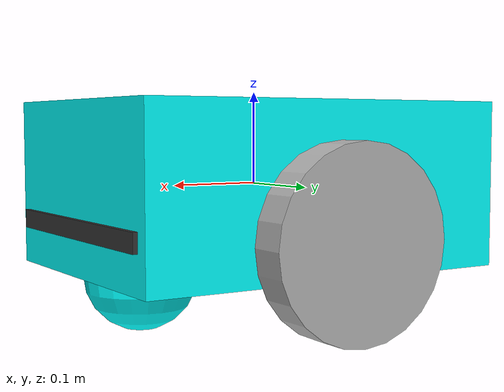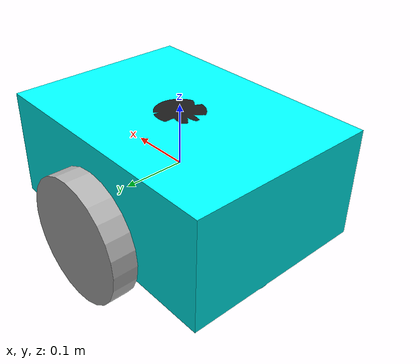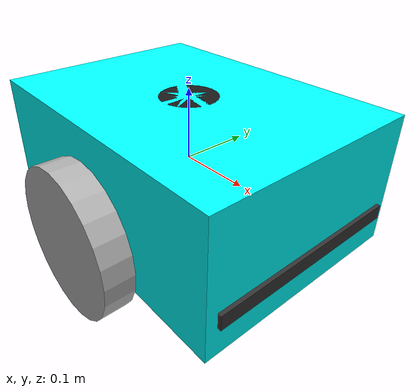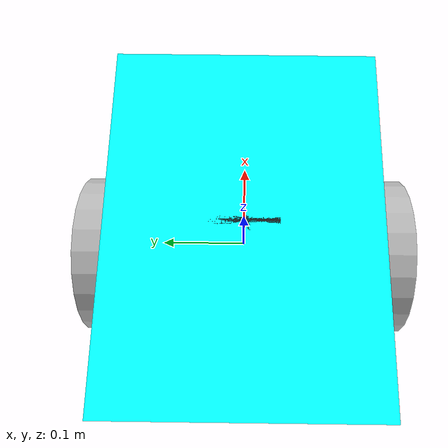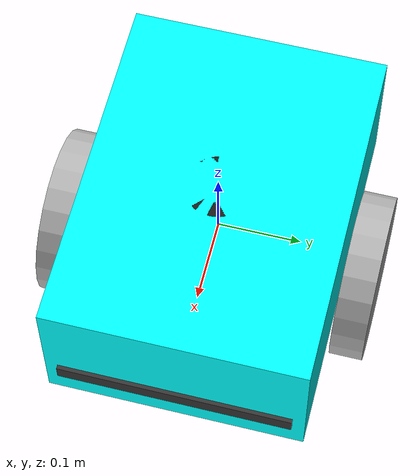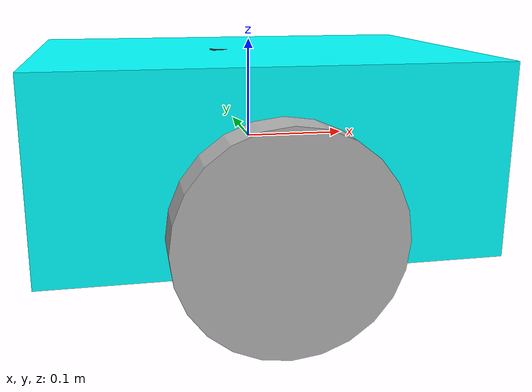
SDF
<?xml version="1.0" ?>
<sdf version="1.8">
  <model name='SyncBot01' canonical_link='base_link'>

    <!-- Robot Base -->
    <link name='base_link'>
      <must_be_base_link>true</must_be_base_link>
      <visual name="base_link_visual">
        <geometry>
          <box><size>0.42 0.31 0.18</size></box>
        </geometry>
        <material>
          <ambient>0 1 1 1</ambient>
          <diffuse>0 1 1 1</diffuse>
        </material>
      </visual>

      <collision name="base_link_collision">
        <geometry>
          <box><size>0.42 0.31 0.18</size></box>
        </geometry>
      </collision>

      <!-- LED Strip (front) -->
      <visual name="led_strip_visual">
        <pose>0.2125 0 -0.04 0 0 0</pose>
        <geometry>
          <box><size>0.005 0.28 0.02</size></box>
        </geometry>
        <material>
          <ambient>0.2 0.2 0.2 1</ambient>
          <diffuse>0.2 0.2 0.2 1</diffuse>
        </material>
      </visual>

      <sensor name="imu_sensor" type="imu">
        <topic>robot01/imu</topic>
        <update_rate>100</update_rate>
        <always_on>1</always_on>
        <gz_frame_id>robot01/imu</gz_frame_id>
        <imu>
          <angular_velocity>
            <x><noise type="gaussian"><mean>0</mean><stddev>0.0002</stddev></noise></x>
            <y><noise type="gaussian"><mean>0</mean><stddev>0.0002</stddev></noise></y>
            <z><noise type="gaussian"><mean>0</mean><stddev>0.0002</stddev></noise></z>
          </angular_velocity>
          <linear_acceleration>
            <x><noise type="gaussian"><mean>0</mean><stddev>0.017</stddev></noise></x>
            <y><noise type="gaussian"><mean>0</mean><stddev>0.017</stddev></noise></y>
            <z><noise type="gaussian"><mean>0</mean><stddev>0.017</stddev></noise></z>
          </linear_acceleration>
        </imu>
      </sensor>
    </link>

    <!-- Robot Footprint -->
    <link name='base_footprint'>
      <pose relative_to="base_joint"/>
      <inertial>
        <pose>0 0 0 1.5708 0 1.5708</pose>
        <mass>15</mass>
        <inertia>
          <ixx>0.261</ixx>
          <ixy>0.0</ixy>
          <ixz>0.0</ixz>
          <iyy>0.341</iyy>
          <iyz>0.0</iyz>
          <izz>0.161</izz>
        </inertia>
      </inertial>
    </link>

    <joint name='base_joint' type='fixed'>
      <parent>base_link</parent>
      <child>base_footprint</child>
      <pose relative_to="base_link">0.0 0.0 -0.15 0 0 0</pose>
    </joint>

    <!-- Left Wheel -->
    <link name="drivewhl_l_link">
      <pose relative_to="drivewhl_l_joint"/>
      <visual name="drivewhl_l_link_visual">
        <pose>0 0 0 1.5708 0 0</pose>
        <geometry>
          <cylinder>
            <radius>0.10</radius>
            <length>0.04</length>
          </cylinder>
        </geometry>
        <material>
          <ambient>0.3 0.3 0.3 1.0</ambient>
          <diffuse>0.7 0.7 0.7 1.0</diffuse>
        </material>
      </visual>
      <collision name="drivewhl_l_link_collision">
        <pose>0 0 0 1.5708 0 0</pose>
        <geometry>
          <cylinder>
            <radius>0.10</radius>
            <length>0.04</length>
          </cylinder>
        </geometry>
      </collision>
      <inertial>
        <pose>0 0 0 1.5708 0 0</pose>
        <mass>0.5</mass>
        <inertia>
          <ixx>0.00132</ixx>
          <ixy>0.0</ixy>
          <ixz>0.0</ixz>
          <iyy>0.00132</iyy>
          <iyz>0.0</iyz>
          <izz>0.0025</izz>
        </inertia>
      </inertial>
    </link>

    <joint name="drivewhl_l_joint" type="revolute">
      <parent>base_link</parent>
      <child>drivewhl_l_link</child>
      <pose relative_to="base_link">0.0 0.18 -0.05 0 0 0</pose>
      <axis>
        <xyz>0 1 0</xyz>
        <limit>
          <lower>-inf</lower>
          <upper>inf</upper>
        </limit>
      </axis>
    </joint>

    <!-- Right Wheel -->
    <link name="drivewhl_r_link">
      <pose relative_to="drivewhl_r_joint"/>
      <visual name="drivewhl_r_link_visual">
        <pose>0 0 0 1.5708 0 0</pose>
        <geometry>
          <cylinder>
            <radius>0.10</radius>
            <length>0.04</length>
          </cylinder>
        </geometry>
        <material>
          <ambient>0.3 0.3 0.3 1.0</ambient>
          <diffuse>0.7 0.7 0.7 1.0</diffuse>
        </material>
      </visual>
      <collision name="drivewhl_r_link_collision">
        <pose>0 0 0 1.5708 0 0</pose>
        <geometry>
          <cylinder>
            <radius>0.10</radius>
            <length>0.04</length>
          </cylinder>
        </geometry>
      </collision>
      <inertial>
        <pose>0 0 0 1.5708 0 0</pose>
        <mass>0.5</mass>
        <inertia>
          <ixx>0.00132</ixx>
          <ixy>0.0</ixy>
          <ixz>0.0</ixz>
          <iyy>0.00132</iyy>
          <iyz>0.0</iyz>
          <izz>0.0025</izz>
        </inertia>
      </inertial>
    </link>

    <joint name="drivewhl_r_joint" type="revolute">
      <parent>base_link</parent>
      <child>drivewhl_r_link</child>
      <pose relative_to="base_link">0.0 -0.18 -0.05 0 0 0</pose>
      <axis>
        <xyz>0 1 0</xyz>
        <limit>
          <lower>-inf</lower>
          <upper>inf</upper>
        </limit>
      </axis>
    </joint>

    <!-- Front Caster -->
    <link name="front_caster">
      <pose relative_to="caster_joint"/>
      <visual name="front_caster_visual">
        <geometry>
          <sphere>
            <radius>0.06</radius>
          </sphere>
        </geometry>
        <material>
          <ambient>0 1 1 1</ambient>
          <diffuse>0 1 1 1</diffuse>
        </material>
      </visual>
      <collision name="front_caster_collision">
        <geometry>
          <sphere>
            <radius>0.06</radius>
          </sphere>
        </geometry>
        <surface>
          <friction>
            <ode>
              <mu>0.0</mu>
              <mu2>0.0</mu2>
            </ode>
          </friction>
        </surface>
      </collision>
      <inertial>
        <mass>0.5</mass>
        <inertia>
          <ixx>0.00072</ixx>
          <ixy>0.0</ixy>
          <ixz>0.0</ixz>
          <iyy>0.00072</iyy>
          <iyz>0.0</iyz>
          <izz>0.00072</izz>
        </inertia>
      </inertial>
    </link>

    <joint name="caster_joint" type="fixed">
      <parent>base_link</parent>
      <child>front_caster</child>
      <pose relative_to="base_link">0.14 0.0 -0.09 0 0 0</pose>
    </joint>

    <!-- Rear Caster -->
    <link name="rear_caster">
      <pose relative_to="rear_caster_joint"/>
      <visual name="rear_caster_visual">
        <geometry>
          <sphere>
            <radius>0.06</radius>
          </sphere>
        </geometry>
        <material>
          <ambient>0 1 1 1</ambient>
          <diffuse>0 1 1 1</diffuse>
        </material>
      </visual>
      <collision name="rear_caster_collision">
        <geometry>
          <sphere>
            <radius>0.06</radius>
          </sphere>
        </geometry>
        <surface>
          <friction>
            <ode>
              <mu>0.0</mu>
              <mu2>0.0</mu2>
            </ode>
          </friction>
        </surface>
      </collision>
      <inertial>
        <mass>0.5</mass>
        <inertia>
          <ixx>0.00072</ixx>
          <ixy>0.0</ixy>
          <ixz>0.0</ixz>
          <iyy>0.00072</iyy>
          <iyz>0.0</iyz>
          <izz>0.00072</izz>
        </inertia>
      </inertial>
    </link>

    <joint name="rear_caster_joint" type="fixed">
      <parent>base_link</parent>
      <child>rear_caster</child>
      <pose relative_to="base_link">-0.14 0.0 -0.09 0 0 0</pose>
    </joint>

    <joint name="lidar_joint" type="fixed">
      <parent>base_link</parent>
      <child>lidar_link</child>
      <pose relative_to="base_link">0.0 0.0 0.07 0 0 0</pose>
    </joint>

    <link name="lidar_link">
      <pose relative_to="lidar_joint"/>
      <visual name="lidar_visual">
        <geometry>
          <cylinder>
            <radius>0.04</radius>
            <length>0.04</length>
          </cylinder>
        </geometry>
        <material>
          <ambient>0.1 0.1 0.1 1</ambient>
          <diffuse>0.1 0.1 0.1 1</diffuse>
        </material>
      </visual>
      <collision name="lidar_collision">
        <geometry>
          <cylinder>
            <radius>0.04</radius>
            <length>0.04</length>
          </cylinder>
        </geometry>
      </collision>
      <inertial>
        <mass>0.1</mass>
        <inertia>
          <ixx>0.000041</ixx><ixy>0</ixy><ixz>0</ixz>
          <iyy>0.000041</iyy><iyz>0</iyz>
          <izz>0.00008</izz>
        </inertia>
      </inertial>

      <sensor name="robot01_lidar" type="gpu_lidar">
        <topic>robot01/scan</topic>
        <update_rate>20</update_rate>
        <gz_frame_id>robot01/laser</gz_frame_id>
        <lidar>
          <scan>
            <horizontal>
              <samples>1024</samples>
              <resolution>1</resolution>
              <min_angle>-3.14159</min_angle>
              <max_angle>3.14159</max_angle>
            </horizontal>
          </scan>
          <range>
            <min>0.12</min>
            <max>25.0</max>
            <resolution>0.01</resolution>
          </range>
          <noise>
            <type>gaussian</type>
            <mean>0.0</mean>
            <stddev>0.01</stddev>
          </noise>
        </lidar>
       </sensor>
    </link>

    <plugin filename="gz-sim-imu-system" name="gz::sim::systems::Imu"/>

    <plugin filename="gz-sim-diff-drive-system" name="gz::sim::systems::DiffDrive">
      <left_joint>drivewhl_l_joint</left_joint>
      <right_joint>drivewhl_r_joint</right_joint>
      <wheel_separation>0.36</wheel_separation>
      <wheel_radius>0.10</wheel_radius>
      <max_linear_acceleration>0.5</max_linear_acceleration>
      <max_angular_acceleration>1.0</max_angular_acceleration>
      <odom_publish_frequency>30</odom_publish_frequency>
      <topic>robot01/cmd_vel</topic>
      <odom_topic>robot01/odom</odom_topic>
      <tf_topic>tf</tf_topic>
      <frame_id>robot01/odom</frame_id>
      <child_frame_id>robot01/base_link</child_frame_id>
    </plugin>

    <plugin filename="gz-sim-sensors-system" name="gz::sim::systems::Sensors">
      <render_engine>ogre2</render_engine>
    </plugin>

    <plugin filename="RobotLedPlugin" name="syncai::RobotLedPlugin">
      <link_name>base_link</link_name>
      <visual_name>led_strip_visual</visual_name>
      <flash_period>0.6</flash_period>
    </plugin>

  </model>
</sdf>
